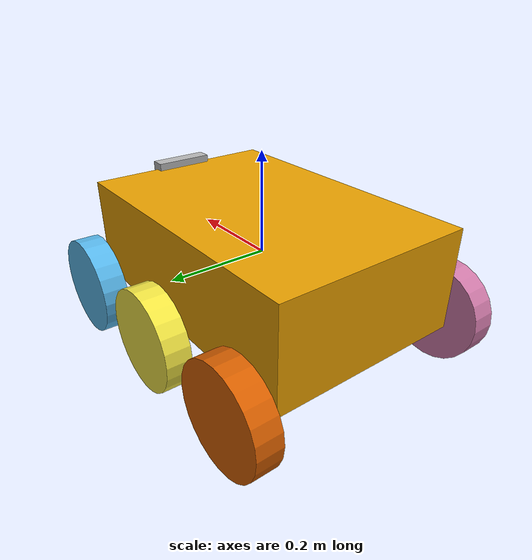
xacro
<?xml version="1.0"?>
<robot name="rover" xmlns:xacro="http://ros.org/wiki/xacro">

  <link name="base_link">
    <visual><geometry><box size="0.6 0.4 0.2"/></geometry></visual>
    <collision><geometry><box size="0.6 0.4 0.2"/></geometry></collision>
    <inertial><mass value="10.0"/><inertia ixx="0.1" ixy="0" ixz="0" iyy="0.1" iyz="0" izz="0.1"/></inertial>
  </link>

  <xacro:macro name="wheel" params="prefix x y">
    <link name="${prefix}_wheel">
      <visual><geometry><cylinder radius="0.1" length="0.05"/></geometry></visual>
      <collision><geometry><cylinder radius="0.1" length="0.05"/></geometry></collision>
      <inertial><mass value="1.0"/><inertia ixx="0.01" ixy="0" ixz="0" iyy="0.01" iyz="0" izz="0.01"/></inertial>
    </link>
    <joint name="${prefix}_wheel_joint" type="continuous">
      <parent link="base_link"/>
      <child link="${prefix}_wheel"/>
      <origin xyz="${x} ${y} -0.1" rpy="-1.5708 0 0"/>
      <axis xyz="0 0 1"/>
    </joint>
  </xacro:macro>

  <xacro:wheel prefix="fl" x="0.25" y="0.25"/>
  <xacro:wheel prefix="fr" x="0.25" y="-0.25"/>
  <xacro:wheel prefix="ml" x="0.0" y="0.25"/>
  <xacro:wheel prefix="mr" x="0.0" y="-0.25"/>
  <xacro:wheel prefix="rl" x="-0.25" y="0.25"/>
  <xacro:wheel prefix="rr" x="-0.25" y="-0.25"/>

  <link name="camera_link">
    <visual><geometry><box size="0.03 0.12 0.03"/></geometry></visual>
  </link>
  <joint name="camera_joint" type="fixed">
    <parent link="base_link"/>
    <child link="camera_link"/>
    <origin xyz="0.3 0 0.1" rpy="0 0 0"/>
  </joint>

  <link name="camera_depth_frame"/>
  <joint name="camera_optical_joint" type="fixed">
    <parent link="camera_link"/>
    <child link="camera_depth_frame"/>
    <origin xyz="0 0 0" rpy="-1.5708 0 -1.5708"/>
  </joint>

  <gazebo>
    <plugin name="diff_drive" filename="libgazebo_ros_diff_drive.so">
      <num_wheel_pairs>3</num_wheel_pairs>
      <left_joint>fl_wheel_joint</left_joint>
      <right_joint>fr_wheel_joint</right_joint>
      <left_joint>ml_wheel_joint</left_joint>
      <right_joint>mr_wheel_joint</right_joint>
      <left_joint>rl_wheel_joint</left_joint>
      <right_joint>rr_wheel_joint</right_joint>
      <wheel_separation>0.5</wheel_separation>
      <wheel_diameter>0.2</wheel_diameter>
      <max_wheel_torque>20</max_wheel_torque>
      <max_wheel_acceleration>1.0</max_wheel_acceleration>
      <publish_odom>true</publish_odom>
      <publish_odom_tf>true</publish_odom_tf>
      <publish_wheel_tf>true</publish_wheel_tf>
      <odometry_frame>odom</odometry_frame>
      <robot_base_frame>base_link</robot_base_frame>
    </plugin>
  </gazebo>

  <gazebo reference="camera_link">
    <sensor type="depth" name="d455">
      <update_rate>30.0</update_rate>
      <camera>
        <horizontal_fov>1.5184</horizontal_fov>
        <image><width>1280</width><height>720</height><format>B8G8R8</format></image>
        <clip><near>0.05</near><far>8.0</far></clip>
      </camera>
      <plugin name="camera_controller" filename="libgazebo_ros_camera.so">
        <frame_name>camera_depth_frame</frame_name>
        <min_depth>0.1</min_depth>
        <max_depth>8.0</max_depth>
      </plugin>
    </sensor>
  </gazebo>
</robot>
